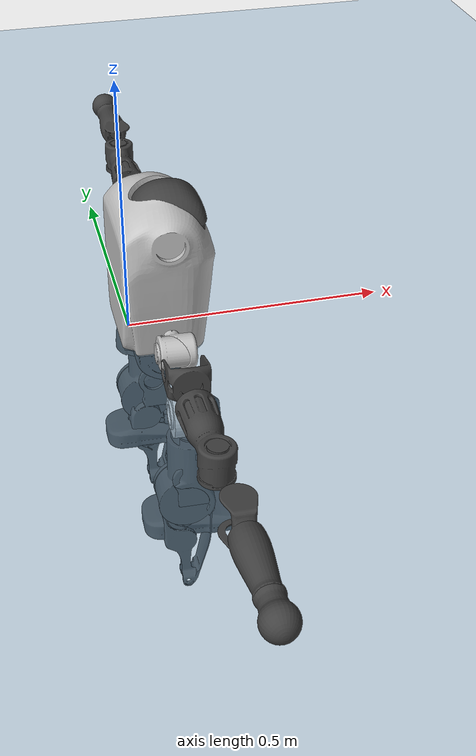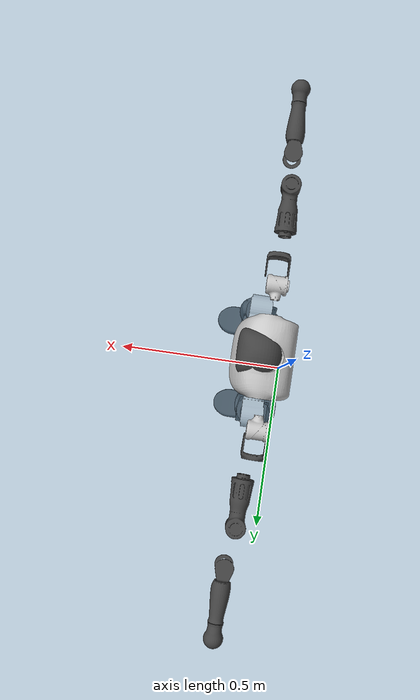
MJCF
<mujoco model="T1">
  <compiler angle="radian" assetdir="assets" balanceinertia="true" inertiafromgeom="false"/>

  <option timestep="0.005" density="1.2" viscosity="2e-05"/>

  <size nkey="1"/>

  <visual>
    <quality shadowsize="8192"/>
    <map shadowclip="0.5"/>
  </visual>

  <default>
    <default class="/">
      <joint armature="0.01" damping="0.01" frictionloss="0.1"/>
      <geom contype="0" conaffinity="0" group="1" solref="-1000 -80"/>
      <site size="0.01 0.005 0.005" group="5"/>
      <general forcelimited="true" biastype="affine" gainprm="25" biasprm="0 -25 -0.6"/>
      <default class="t1">
        <geom rgba="0.25 0.25 0.25 1"/>
        <default class="visual">
          <geom type="mesh" group="2"/>
        </default>
        <default class="collision">
          <geom group="3"/>
        </default>
        <default class="foot">
          <geom size="0.1115 0.05 0.015" type="box" condim="6" group="4" priority="1" solimp="0.015 1 0.015"/>
        </default>
        <default class="reward_collision_sphere">
          <geom group="5" rgba="1 0 0 1"/>
        </default>
      </default>
    </default>
  </default>

  <asset>
    <texture type="skybox" colorspace="auto" name="//unnamed_texture_0" builtin="gradient" rgb1="0.95 0.95 0.95" rgb2="0.95 0.95 0.95" width="100" height="600"/>
    <texture type="2d" colorspace="auto" name="texplane" builtin="checker" rgb1="0.345 0.575 0.748" rgb2="0.345 0.575 0.748" markrgb="1 1 1" width="512" height="512"/>
    <material name="MatPlane" class="/" texture="texplane" texuniform="true" texrepeat="2 2" specular="0.9"/>
    <mesh name="Trunk" class="/" file="Trunk.stl"/>
    <mesh name="H1" class="/" file="H1.stl"/>
    <mesh name="H2" class="/" file="H2.stl"/>
    <mesh name="AL1" class="/" file="AL1.stl"/>
    <mesh name="AL2" class="/" file="AL2.stl"/>
    <mesh name="AL3" class="/" file="AL3.stl"/>
    <mesh name="left_hand_link" class="/" file="left_hand_link.stl"/>
    <mesh name="AR1" class="/" file="AR1.stl"/>
    <mesh name="AR2" class="/" file="AR2.stl"/>
    <mesh name="AR3" class="/" file="AR3.stl"/>
    <mesh name="right_hand_link" class="/" file="right_hand_link.stl"/>
    <mesh name="Waist" class="/" file="Waist.stl"/>
    <mesh name="Hip_Pitch_Left" class="/" file="Hip_Pitch_Left.stl"/>
    <mesh name="Hip_Roll_Left" class="/" file="Hip_Roll_Left.stl"/>
    <mesh name="Hip_Yaw_Left" class="/" file="Hip_Yaw_Left.stl"/>
    <mesh name="Shank_Left" class="/" file="Shank_Left.stl"/>
    <mesh name="Ankle_Cross_Left" class="/" file="Ankle_Cross_Left.stl"/>
    <mesh name="left_foot_link" class="/" file="left_foot_link.stl"/>
    <mesh name="Hip_Pitch_Right" class="/" file="Hip_Pitch_Right.stl"/>
    <mesh name="Hip_Roll_Right" class="/" file="Hip_Roll_Right.stl"/>
    <mesh name="Hip_Yaw_Right" class="/" file="Hip_Yaw_Right.stl"/>
    <mesh name="Shank_Right" class="/" file="Shank_Right.stl"/>
    <mesh name="Ankle_Cross_Right" class="/" file="Ankle_Cross_Right.stl"/>
    <mesh name="right_foot_link" class="/" file="right_foot_link.stl"/>
  </asset>

  <worldbody>
    <geom name="floor" class="/" size="100 100 0.125" type="plane" group="0" material="MatPlane"/>
    <light name="toplight_shadow" class="/" pos="0 0 5" dir="0.0990148 0.0990148 -0.990148" type="directional" ambient="0.04 0.04 0.04" diffuse="0.55 0.55 0.55" specular="0.12 0.12 0.12"/>
    <light name="toplight_fill" class="/" pos="0 0 5" dir="0.0990148 0.0990148 -0.990148" type="directional" castshadow="false" ambient="0.04 0.04 0.04" diffuse="0.3 0.3 0.3" specular="0.08 0.08 0.08"/>
    <body name="trunk" childclass="t1" pos="0.00282258 -0.0136578 0.0180812" quat="0.999955 -0.00385475 0.00823327 -0.0028327">
      <inertial pos="0.0507797 -0.00206659 0.0399535" quat="0.999898 -0.00771685 -0.00960889 0.00726661" mass="15.0195" diaginertia="0.140751 1.19947 0.00116093"/>
      <joint name="//unnamed_joint_0" type="free" armature="0" damping="0" frictionloss="0"/>
      <geom name="//unnamed_geom_1" class="visual" rgba="0.76 0.76 0.76 1" mesh="Trunk"/>
      <geom name="//unnamed_geom_2" class="collision" size="0.0792578 0.105677 0.158516" pos="0.0611349 0 0.0516786" type="box"/>
      <geom name="//unnamed_geom_3" class="reward_collision_sphere" size="0.121529" pos="0.0611349 0 0.0430655"/>
      <geom name="//unnamed_geom_4" class="reward_collision_sphere" size="0.0158516" pos="0.0611349 0.146263 0"/>
      <geom name="//unnamed_geom_5" class="reward_collision_sphere" size="0.0158516" pos="0.0611349 -0.146263 0"/>
      <geom name="//unnamed_geom_6" class="reward_collision_sphere" size="0.0158516" pos="0.0611349 0.184119 0.077518"/>
      <geom name="//unnamed_geom_7" class="reward_collision_sphere" size="0.0158516" pos="0.0611349 -0.184119 0.077518"/>
      <site name="imu" pos="0.0894012 0.0297702 0.0169932" size="0.0105677"/>
      <camera name="track" pos="0 -3.44148 0" quat="0.707107 0.707107 0 0" mode="trackcom"/>
      <camera name="ego_camera" pos="0.124308 0 0.180875" quat="-0.5 -0.5 0.5 0.5"/>
      <body name="H1" pos="0.0498563 0.00041213 0.0904094" quat="0.999962 -0.00304626 -0.00212422 0.00785495">
        <inertial pos="-0.0161282 -0.0142845 0.0160857" quat="0.762558 -0.0385788 -0.00166472 0.645766" mass="0.39407" diaginertia="0.000203226 0.00241556 2.36952e-06"/>
        <joint name="AAHead_yaw" pos="0 0 0" axis="-0.0189665 0.0189741 0.99964" range="-1.17665 1.75114" armature="0.00780268" damping="0.0622278" frictionloss="0.0500057"/>
        <geom name="//unnamed_geom_8" class="visual" mesh="H1"/>
        <body name="H2" pos="0.00869487 -0.00894748 0.0120014" quat="0.999957 0.00872509 -0.00130579 -0.00290776">
          <inertial pos="0.000514928 -0.00530651 0.045544" quat="0.988825 0.101783 -0.0758395 -0.0781943" mass="0.884426" diaginertia="0.00253809 0.0331797 2.42113e-05"/>
          <joint name="Head_pitch" pos="0 0 0" axis="0.0635218 -0.996103 0.0611911" stiffness="0.0574736" range="-0.92557 -0.010413" armature="0.00229988" damping="0" frictionloss="0.007416"/>
          <geom name="//unnamed_geom_9" class="visual" mesh="H2"/>
          <geom name="//unnamed_geom_10" class="collision" size="0.0845417" pos="0.0101891 0 0.0473721"/>
          <geom name="//unnamed_geom_11" class="reward_collision_sphere" size="0.0951094" pos="0.0203783 0 0.0430655"/>
        </body>
      </body>
      <body name="AL1" pos="0.0404271 0.169908 0.0819855" quat="0.999995 0.0014402 0.00150262 -0.00230037">
        <inertial pos="0.0181778 0.0883752 0.0116454" quat="0.515891 0.522971 -0.439332 0.517054" mass="0.733822" diaginertia="0.00154985 0.0171113 5.41414e-06"/>
        <joint name="Left_Shoulder_Pitch" pos="0 0 0" axis="0.00237277 0.999608 0.0278977" range="-3.16485 1.17195" armature="0.00709074" damping="0" frictionloss="0.16278"/>
        <geom name="//unnamed_geom_12" class="visual" rgba="0.76 0.76 0.76 1" mesh="AL1"/>
        <body name="AL2" pos="0.00147888 0.0789164 0.0182918" quat="0.99996 -0.00409279 -0.00642085 -0.0046808">
          <inertial pos="0.0143058 0.0692264 0.0167077" quat="0.489222 0.555189 -0.464126 0.486841" mass="0.145633" diaginertia="0.000466616 0.00580844 2.22515e-06"/>
          <joint name="Left_Shoulder_Roll" pos="0 0 0" axis="-0.99589 -0.0631115 0.0649592" stiffness="0.00847172" range="-1.63686 1.9066" armature="0.00656059" damping="0" frictionloss="0.200855"/>
          <geom name="//unnamed_geom_13" class="visual" mesh="AL2"/>
          <body name="AL3" pos="0.0184208 0.115967 0.00686351" quat="0.999995 -0.00192191 0.00231456 0.000151912">
            <inertial pos="0.00758521 0.146885 -0.0169593" quat="0.7036 0.710498 -0.00330125 -0.0113117" mass="1.30979" diaginertia="0.0124211 0.211644 1.08642e-05"/>
            <joint name="Left_Elbow_Pitch" pos="0 0 0" axis="-0.0507944 -0.996277 0.0696581" range="-2.42334 2.28077" armature="0.016044" damping="0.0267815" frictionloss="0.0478141"/>
            <geom name="//unnamed_geom_14" class="visual" mesh="AL3"/>
            <geom name="//unnamed_geom_15" class="collision" size="0.0317031 0.0792578" pos="0 0.0860371 0" quat="0.707105 0.707108 0 0" type="cylinder"/>
            <geom name="//unnamed_geom_16" class="reward_collision_sphere" size="0.0380437"/>
            <body name="left_hand_link" pos="0.0138009 0.270671 -0.0190953" quat="0.999987 0.00191242 -0.00414113 0.002291">
              <inertial pos="-0.000572074 0.17706 -0.0144376" quat="0.713181 0.70067 0.00549028 0.020098" mass="0.335749" diaginertia="0.00843037 0.0773188 2.41046e-06"/>
              <joint name="Left_Elbow_Yaw" pos="0 0 0" axis="-0.00435722 0.0837995 0.996473" stiffness="0.0732298" range="-2.63142 -0.0868767" armature="0.00769796" damping="0" frictionloss="0.0343792"/>
              <geom name="//unnamed_geom_17" class="visual" mesh="left_hand_link"/>
              <geom name="//unnamed_geom_18" class="collision" size="0.0317031 0.0924674" pos="0 0.223696 0" quat="0.707105 0.707108 0 0" type="cylinder"/>
              <geom name="//unnamed_geom_19" class="reward_collision_sphere" size="0.0528385"/>
              <geom name="//unnamed_geom_20" class="reward_collision_sphere" size="0.036987" pos="0 0.189282 0"/>
              <geom name="//unnamed_geom_21" class="reward_collision_sphere" size="0.036987" pos="0 0.36996 0"/>
            </body>
          </body>
        </body>
      </body>
      <body name="AR1" pos="0.0433118 -0.188504 0.078057" quat="0.999959 -0.00437231 0.00755593 0.00240905">
        <inertial pos="-0.000447208 -0.0659852 -0.00819974" quat="0.552832 0.469929 -0.493286 0.479805" mass="0.744592" diaginertia="0.0020254 0.0211344 5.10424e-06"/>
        <joint name="Right_Shoulder_Pitch" pos="0 0 0" axis="0.0209897 -0.998959 0.0405126" stiffness="0.0829636" range="-1.19334 3.0363" armature="0.0156446" damping="0.0915217" frictionloss="0.0734743"/>
        <geom name="//unnamed_geom_22" class="visual" rgba="0.76 0.76 0.76 1" mesh="AR1"/>
        <body name="AR2" pos="0.00398098 -0.0904603 -0.00942641" quat="0.999978 0.0017485 0.00505222 0.00399809">
          <inertial pos="0.0146859 -0.0643217 -0.0140381" quat="0.498299 0.485972 -0.527741 0.486846" mass="0.232577" diaginertia="0.000342084 0.00577035 3.2249e-06"/>
          <joint name="Right_Shoulder_Roll" pos="0 0 0" axis="-0.999883 -0.0107625 0.0108339" stiffness="0.0263643" range="-1.91905 1.50632" armature="0.0104685" damping="0" frictionloss="0.0174873"/>
          <geom name="//unnamed_geom_23" class="visual" mesh="AR2"/>
          <body name="AR3" pos="-0.00821215 -0.120196 0.00963778" quat="0.99999 0.0032486 -0.000744971 0.00295962">
            <inertial pos="0.0185987 -0.150805 -0.00823326" quat="0.701575 0.708956 -0.0481941 0.0533885" mass="0.847765" diaginertia="0.0150427 0.210684 9.08993e-06"/>
            <joint name="Right_Elbow_Pitch" pos="0 0 0" axis="0.046366 0.998135 0.0397179" stiffness="0.096204" range="-2.2918 2.51" armature="0.0194156" damping="0.0293457" frictionloss="0.137326"/>
            <geom name="//unnamed_geom_24" class="visual" mesh="AR3"/>
            <geom name="//unnamed_geom_25" class="collision" size="0.0317031 0.0792578" pos="0 -0.0860371 0" quat="0.707105 0.707108 0 0" type="cylinder"/>
            <geom name="//unnamed_geom_26" class="reward_collision_sphere" size="0.0380437"/>
            <body name="right_hand_link" pos="0.0060269 -0.248861 -0.0186382" quat="0.999999 0.00085274 0.000284565 0.000452357">
              <inertial pos="0.0137699 -0.203568 0.00959814" quat="0.691044 0.721604 0.0313251 -0.0276699" mass="0.448173" diaginertia="0.00894821 0.1592 3.11824e-06"/>
              <joint name="Right_Elbow_Yaw" pos="0 0 0" axis="-0.0398123 0.0241123 0.998916" stiffness="0.0464111" range="0.11436 2.48999" armature="0.0163705" damping="0.0612957" frictionloss="0.0778957"/>
              <geom name="//unnamed_geom_27" class="visual" mesh="right_hand_link"/>
              <geom name="//unnamed_geom_28" class="collision" size="0.0317031 0.0924674" pos="0 -0.223696 0" quat="0.707105 0.707108 0 0" type="cylinder"/>
              <geom name="//unnamed_geom_29" class="reward_collision_sphere" size="0.0528385"/>
              <geom name="//unnamed_geom_30" class="reward_collision_sphere" size="0.036987" pos="0 -0.189282 0"/>
              <geom name="//unnamed_geom_31" class="reward_collision_sphere" size="0.036987" pos="0 -0.36996 0"/>
            </body>
          </body>
        </body>
      </body>
      <body name="Waist" pos="0.0608607 0.00740814 -0.0634868" quat="0.999999 -0.00102371 0.000278587 0.000439001">
        <inertial pos="-0.0101598 -0.00429517 -0.00757979" quat="0.986881 0.00280426 -0.16137 -0.004258" mass="2.69043" diaginertia="0.00619485 0.0563165 7.3648e-05"/>
        <joint name="Waist" pos="0 0 0" axis="0.0275398 -0.033481 0.99906" stiffness="0.0660848" range="-1.27411 1.32788" armature="0.00942542" damping="0.0991669" frictionloss="0.118881"/>
        <geom name="//unnamed_geom_32" class="visual" mesh="Waist"/>
        <body name="Hip_Pitch_Left" pos="-0.00457369 0.163192 -0.0167257" quat="1 -1.96438e-05 -1.98575e-06 -4.59252e-06">
          <inertial pos="0.0141932 -0.0169516 0.0112002" quat="0.966219 0.254784 0.0388111 9.06114e-05" mass="0.919389" diaginertia="0.00161182 0.0201604 1.64717e-05"/>
          <joint name="Left_Hip_Pitch" pos="0 0 0" axis="-0.0646474 0.997895 -0.0051328" stiffness="0.0789441" range="-2.11673 1.48498" armature="0.0106786" damping="0.0916654" frictionloss="0.191457"/>
          <geom name="//unnamed_geom_33" class="visual" rgba="0.76 0.76 0.76 1" mesh="Hip_Pitch_Left"/>
          <body name="Hip_Roll_Left" pos="-0.0113419 -0.00341399 -0.0100835" quat="0.999999 -0.000847315 -0.00122137 0.000269462">
            <inertial pos="0.00613228 0.00778621 -0.0222867" quat="0.709201 0.0478237 -0.0227204 0.703016" mass="0.397456" diaginertia="0.00171356 0.015696 5.90628e-06"/>
            <joint name="Left_Hip_Roll" pos="0 0 0" axis="-0.99879 0.0191137 -0.0453027" range="-1.86025 0.244785" armature="0.0103142" damping="0" frictionloss="0.182105"/>
            <geom name="//unnamed_geom_34" class="visual" mesh="Hip_Roll_Left"/>
            <geom name="//unnamed_geom_35" class="reward_collision_sphere" size="0.0581224"/>
            <body name="Hip_Yaw_Left" pos="0.0153809 -0.00733366 -0.0543923" quat="0.999999 0.00112546 0.00101081 -6.42097e-05">
              <inertial pos="-0.0150111 -0.00382327 -0.0207702" quat="0.698908 -0.0791237 -0.0114684 0.710729" mass="2.86127" diaginertia="0.0202472 0.32009 3.50981e-05"/>
              <joint name="Left_Hip_Yaw" pos="0 0 0" axis="0.0456048 -0.0589962 -0.997216" stiffness="0.0973356" range="-0.941085 0.705275" armature="0.018863" damping="0.0775052" frictionloss="0.194795"/>
              <geom name="//unnamed_geom_36" class="visual" mesh="Hip_Yaw_Left"/>
              <geom name="//unnamed_geom_37" class="collision" size="0.0528385 0.0845417" type="cylinder"/>
              <body name="Shank_Left" pos="-0.00121587 -0.0175261 -0.0739881" quat="0.999956 -0.00901745 -0.000614391 -0.00232706">
                <inertial pos="-0.0180776 0.0199744 -0.043206" quat="0.9957 -0.045146 0.0470404 0.0658111" mass="1.81977" diaginertia="0.0260587 0.47333 2.20457e-05"/>
                <joint name="Left_Knee_Pitch" pos="0 0 0" axis="0.0488775 0.998124 -0.0368819" range="0.172843 2.38523" armature="0.00306722" damping="0.0541735" frictionloss="0.197628"/>
                <geom name="//unnamed_geom_38" class="visual" mesh="Shank_Left"/>
                <geom name="//unnamed_geom_39" class="collision" size="0.0528385 0.0792578" pos="0 0 -0.0516786" type="cylinder"/>
                <geom name="//unnamed_geom_40" class="reward_collision_sphere" size="0.0686901"/>
                <body name="Ankle_Cross_Left" pos="0.0185273 0.0101346 -0.127069" quat="1 0.000654457 3.64995e-05 0.000522765">
                  <inertial pos="-0.00940092 0.00566054 -0.0081978" quat="0.477731 0.593948 0.476899 0.437683" mass="0.0668075" diaginertia="3.12246e-05 0.000367332 1.42942e-07"/>
                  <joint name="Left_Ankle_Pitch" pos="0 0 0" axis="0.0179588 0.997806 0.0637194" range="-0.931454 0.683985" armature="0.00954312" damping="0" frictionloss="0.124653"/>
                  <geom name="//unnamed_geom_41" class="visual" mesh="Ankle_Cross_Left"/>
                  <body name="left_foot_link" pos="-0.0147128 -0.00410059 -0.0116001" quat="0.999977 -0.00172208 0.00599085 -0.00258809">
                    <inertial pos="-0.00499399 0.000152118 -0.0232673" quat="-0.00343839 0.623561 0.00626251 0.781742" mass="1.06419" diaginertia="0.00394601 0.0431593 4.21097e-05"/>
                    <joint name="Left_Ankle_Roll" pos="0 0 0" axis="-0.997925 -0.0356372 0.0536292" range="-0.15527 0.216775" armature="0.0113094" damping="0" frictionloss="0.106164"/>
                    <geom name="//unnamed_geom_42" class="visual" mesh="left_foot_link"/>
                    <geom name="left_foot" class="foot" size="0.0409987 0.017345 0.00898938" pos="0.0101891 0 -0.00645983"/>
                    <geom name="//unnamed_geom_44" class="reward_collision_sphere" size="0.0549521" pos="0.0101891 0 -0.00645983"/>
                    <geom name="//unnamed_geom_45" class="reward_collision_sphere" size="0.0317031" pos="0.0967969 -0.0395771 -0.00645983"/>
                    <geom name="//unnamed_geom_46" class="reward_collision_sphere" size="0.0317031" pos="-0.071324 -0.0395771 -0.00645983"/>
                    <site name="left_foot" class="foot" pos="0.0101891 0 -0.00645983" size="0.0105677"/>
                  </body>
                </body>
              </body>
            </body>
          </body>
        </body>
        <body name="Hip_Pitch_Right" pos="0.0149776 -0.185649 -0.0167182" quat="0.999961 -0.00461965 -0.00155813 -0.00742488">
          <inertial pos="0.000286963 0.0317936 -0.0163685" quat="0.964492 -0.256925 0.0589384 -0.0164649" mass="1.07774" diaginertia="0.00162552 0.0200795 1.39724e-05"/>
          <joint name="Right_Hip_Pitch" pos="0 0 0" axis="0.00464953 -0.999678 -0.0249575" stiffness="0.0642958" range="-1.83673 2.13243" armature="0.00867162" damping="0" frictionloss="0.00795594"/>
          <geom name="//unnamed_geom_47" class="visual" rgba="0.76 0.76 0.76 1" mesh="Hip_Pitch_Right"/>
          <body name="Hip_Roll_Right" pos="0.0170722 0.00489253 -0.0239447" quat="0.999997 -0.000202487 -0.000416958 -0.00224081">
            <inertial pos="0.0110485 -0.00224715 -0.0347756" quat="0.703953 -0.00955004 -0.00450795 0.710168" mass="0.453454" diaginertia="0.00237136 0.0198034 6.64806e-06"/>
            <joint name="Right_Hip_Roll" pos="0 0 0" axis="-0.998161 -0.0593073 0.0125184" range="-0.474198 1.77577" armature="0.0118283" damping="0.0687383" frictionloss="0.0216614"/>
            <geom name="//unnamed_geom_48" class="visual" mesh="Hip_Roll_Right"/>
            <geom name="//unnamed_geom_49" class="reward_collision_sphere" size="0.0581224"/>
            <body name="Hip_Yaw_Right" pos="-0.015473 -0.00136267 -0.0515673" quat="0.999999 -0.000334855 -0.00113914 -0.000232727">
              <inertial pos="0.00887309 -0.0195833 -0.0462827" quat="0.706873 -0.029162 -0.0534218 0.704717" mass="3.57841" diaginertia="0.0276042 0.416583 5.39301e-05"/>
              <joint name="Right_Hip_Yaw" pos="0 0 0" axis="0.0242475 0.045184 -0.998684" stiffness="0.0378689" range="-1.14999 0.888948" armature="0.0113598" damping="0" frictionloss="0.110733"/>
              <geom name="//unnamed_geom_50" class="visual" mesh="Hip_Yaw_Right"/>
              <geom name="//unnamed_geom_51" class="collision" size="0.0528385 0.0845417" type="cylinder"/>
              <body name="Shank_Right" pos="-0.00899472 0.00465535 -0.0764246" quat="0.999997 0.00161787 0.0017811 -3.1425e-05">
                <inertial pos="0.0141114 -0.010445 -0.0388374" quat="0.995015 0.0846545 0.00698626 -0.0522432" mass="2.14239" diaginertia="0.0522464 0.52859 3.36252e-05"/>
                <joint name="Right_Knee_Pitch" pos="0 0 0" axis="-0.000982786 -0.999999 0.000686564" range="-2.29702 0.340771" armature="0.00925339" damping="0" frictionloss="0.180917"/>
                <geom name="//unnamed_geom_52" class="visual" mesh="Shank_Right"/>
                <geom name="//unnamed_geom_53" class="collision" size="0.0528385 0.0792578" pos="0 0 -0.0516786" type="cylinder"/>
                <geom name="//unnamed_geom_54" class="reward_collision_sphere" size="0.0686901"/>
                <body name="Ankle_Cross_Right" pos="0.0122969 0.0114718 -0.103971" quat="0.999988 0.00324346 -0.00377936 -0.000438847">
                  <inertial pos="0.000434926 0.0122414 0.00177565" quat="0.490048 0.534866 0.55634 0.405288" mass="0.111151" diaginertia="3.40271e-05 0.000466123 1.82762e-07"/>
                  <joint name="Right_Ankle_Pitch" pos="0 0 0" axis="0.00411109 -0.99999 0.00168761" range="-0.748355 0.59983" armature="0.0138706" damping="0" frictionloss="0.0914407"/>
                  <geom name="//unnamed_geom_55" class="visual" mesh="Ankle_Cross_Right"/>
                  <body name="right_foot_link" pos="0.00681227 0.0072843 -0.0186182" quat="0.999998 -0.00130799 0.0013034 0.000804502">
                    <inertial pos="-0.00574482 0.0104316 -0.0228768" quat="0.0013141 0.61794 0.0347675 0.785455" mass="0.900689" diaginertia="0.00315473 0.0429591 3.68108e-05"/>
                    <joint name="Right_Ankle_Roll" pos="0 0 0" axis="-0.999991 0.0034036 -0.00244931" range="-0.263831 0.355573" armature="0.00760528" damping="0.0553231" frictionloss="0.000785653"/>
                    <geom name="//unnamed_geom_56" class="visual" mesh="right_foot_link"/>
                    <geom name="right_foot" class="foot" size="0.053817 0.0911795 0.00402821" pos="0.0101891 0 -0.00645983"/>
                    <geom name="//unnamed_geom_58" class="reward_collision_sphere" size="0.0422708"/>
                    <geom name="//unnamed_geom_59" class="reward_collision_sphere" size="0.0317031" pos="0.0101891 0 -0.00645983"/>
                    <geom name="//unnamed_geom_60" class="reward_collision_sphere" size="0.0317031" pos="0.0967969 0.0395771 -0.00645983"/>
                    <geom name="//unnamed_geom_61" class="reward_collision_sphere" size="0.0317031" pos="-0.071324 0.0395771 -0.00645983"/>
                    <site name="right_foot" class="foot" pos="0.0101891 0 -0.00645983" size="0.0105677"/>
                  </body>
                </body>
              </body>
            </body>
          </body>
        </body>
      </body>
    </body>
  </worldbody>

  <contact>
    <pair class="/" geom1="floor" geom2="left_foot" name="//unnamed_contact_0"/>
    <pair class="/" geom1="floor" geom2="right_foot" name="//unnamed_contact_1"/>
  </contact>

  <actuator>
    <general name="AAHead_yaw" class="/" joint="AAHead_yaw" forcerange="-7.8539 7.8539" gainprm="16.3008" biasprm="0 -16.3008 -0.649596"/>
    <general name="Head_pitch" class="/" joint="Head_pitch" forcerange="-4.21464 4.21464" gainprm="16.3008" biasprm="0 -16.3008 -0.649596"/>
    <general name="Left_Shoulder_Pitch" class="/" joint="Left_Shoulder_Pitch" forcerange="-26.9706 26.9706" gainprm="16.3008" biasprm="0 -16.3008 -0.649596"/>
    <general name="Left_Shoulder_Roll" class="/" joint="Left_Shoulder_Roll" forcerange="-12.6833 12.6833" gainprm="16.3008" biasprm="0 -16.3008 -0.649596"/>
    <general name="Left_Elbow_Pitch" class="/" joint="Left_Elbow_Pitch" forcerange="-30.7969 30.7969" gainprm="16.3008" biasprm="0 -16.3008 -0.649596"/>
    <general name="Left_Elbow_Yaw" class="/" joint="Left_Elbow_Yaw" forcerange="-19.4543 19.4543" gainprm="16.3008" biasprm="0 -16.3008 -0.649596"/>
    <general name="Right_Shoulder_Pitch" class="/" joint="Right_Shoulder_Pitch" forcerange="-13.4204 13.4204" gainprm="16.3008" biasprm="0 -16.3008 -0.649596"/>
    <general name="Right_Shoulder_Roll" class="/" joint="Right_Shoulder_Roll" forcerange="-9.73113 9.73113" gainprm="16.3008" biasprm="0 -16.3008 -0.649596"/>
    <general name="Right_Elbow_Pitch" class="/" joint="Right_Elbow_Pitch" forcerange="-18.5997 18.5997" gainprm="16.3008" biasprm="0 -16.3008 -0.649596"/>
    <general name="Right_Elbow_Yaw" class="/" joint="Right_Elbow_Yaw" forcerange="-15.4923 15.4923" gainprm="16.3008" biasprm="0 -16.3008 -0.649596"/>
    <general name="Waist" class="/" joint="Waist" forcerange="-37.5568 37.5568" gainprm="16.3008" biasprm="0 -16.3008 -0.649596"/>
    <general name="Left_Hip_Pitch" class="/" joint="Left_Hip_Pitch" forcerange="-47.4448 47.4448" gainprm="16.3008" biasprm="0 -16.3008 -0.649596"/>
    <general name="Left_Hip_Roll" class="/" joint="Left_Hip_Roll" forcerange="-9.68339 9.68339" gainprm="16.3008" biasprm="0 -16.3008 -0.649596"/>
    <general name="Left_Hip_Yaw" class="/" joint="Left_Hip_Yaw" forcerange="-47.5433 47.5433" gainprm="16.3008" biasprm="0 -16.3008 -0.649596"/>
    <general name="Left_Knee_Pitch" class="/" joint="Left_Knee_Pitch" forcerange="-20.7662 20.7662" gainprm="16.3008" biasprm="0 -16.3008 -0.649596"/>
    <general name="Left_Ankle_Pitch" class="/" joint="Left_Ankle_Pitch" forcerange="-31.5212 31.5212" gainprm="16.3008" biasprm="0 -16.3008 -0.649596"/>
    <general name="Left_Ankle_Roll" class="/" joint="Left_Ankle_Roll" forcerange="-23.2879 23.2879" gainprm="16.3008" biasprm="0 -16.3008 -0.649596"/>
    <general name="Right_Hip_Pitch" class="/" joint="Right_Hip_Pitch" forcerange="-77.7982 77.7982" gainprm="16.3008" biasprm="0 -16.3008 -0.649596"/>
    <general name="Right_Hip_Roll" class="/" joint="Right_Hip_Roll" forcerange="-39.5212 39.5212" gainprm="16.3008" biasprm="0 -16.3008 -0.649596"/>
    <general name="Right_Hip_Yaw" class="/" joint="Right_Hip_Yaw" forcerange="-15.5642 15.5642" gainprm="16.3008" biasprm="0 -16.3008 -0.649596"/>
    <general name="Right_Knee_Pitch" class="/" joint="Right_Knee_Pitch" forcerange="-57.8832 57.8832" gainprm="16.3008" biasprm="0 -16.3008 -0.649596"/>
    <general name="Right_Ankle_Pitch" class="/" joint="Right_Ankle_Pitch" forcerange="-19.2152 19.2152" gainprm="16.3008" biasprm="0 -16.3008 -0.649596"/>
    <general name="Right_Ankle_Roll" class="/" joint="Right_Ankle_Roll" forcerange="-18.9981 18.9981" gainprm="16.3008" biasprm="0 -16.3008 -0.649596"/>
  </actuator>

  <sensor>
    <gyro site="imu" name="imu_angular_velocity"/>
    <velocimeter site="imu" name="imu_linear_velocity"/>
    <framelinvel objtype="site" objname="left_foot" name="left_foot_global_linear_velocity"/>
    <framelinvel objtype="site" objname="right_foot" name="right_foot_global_linear_velocity"/>
  </sensor>

  <keyframe>
    <key name="home" qpos="0 0 0.6385 1 0 0 0 0 0 0 1.4 0 -0.4 0 -1.4 0 0.4 0 -0.4 0 0 0.8 -0.4 0 0.4 0 0 -0.8 0.4 0"/>
  </keyframe>
</mujoco>
